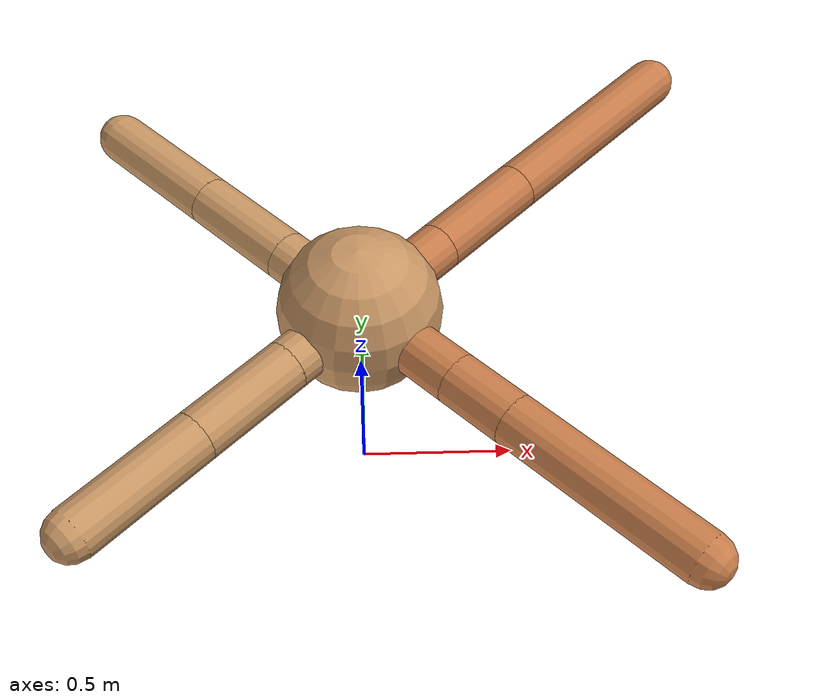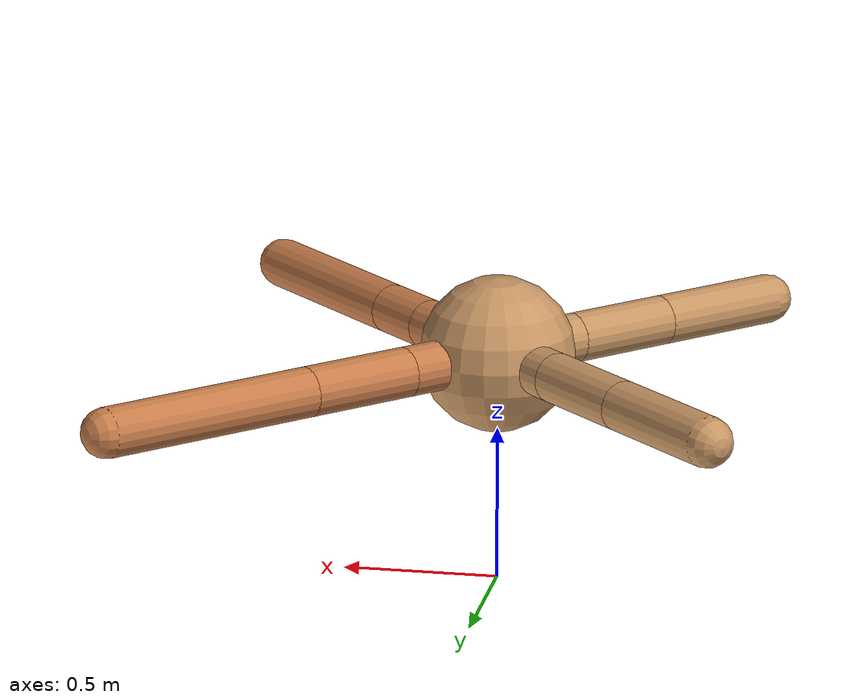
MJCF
<mujoco model="ant">
  <compiler angle="degree" coordinate="local" inertiafromgeom="true" />
  <option integrator="RK4" timestep="0.01" />
  <custom>
    <numeric data="0.0 0.0 0.55 1.0 0.0 0.0 0.0 0.0 1.0 0.0 -1.0 0.0 -1.0 0.0 1.0" name="init_qpos" />
  </custom>
  <default>
    <joint armature="1" damping="1" limited="true" />
    <geom conaffinity="0" condim="3" density="5.0" friction="1.5 0.1 0.1" margin="0.01" rgba="0.8 0.6 0.4 1" />
  </default>
  <worldbody>
    <body name="torso" pos="0 0 0.75">
      <geom name="torso_geom" pos="0 0 0" size="0.25" type="sphere" />

      <body name="front_left_leg" pos="0 0 0">
        <geom fromto="0.0 0.0 0.0 0.24970136441743787 0.24970136441743787 0.0" name="aux_1_geom" size="0.08" type="capsule" rgba=".8 .5 .3 1" />
        <body name="aux_1" pos="0.24970136441743787 0.24970136441743787 0.0">
          <joint axis="0 0 1" name="hip_1" pos="0.0 0.0 0.0" range="-40 40" type="hinge" />
          <geom fromto="0.0 0.0 0.0 0.26029618602706867 0.26029618602706867 0.0" name="left_leg_geom" size="0.08" type="capsule" rgba=".8 .5 .3 1" />
          <body pos="0.26029618602706867 0.26029618602706867 0.0" name="front_left_foot">
            <joint axis="-1 1 0" name="ankle_1" pos="0.0 0.0 0.0" range="30 100" type="hinge" />
            <geom fromto="0.0 0.0 0.0 0.5174450995669156 0.5174450995669156 0.0" name="left_ankle_geom" size="0.08" type="capsule" rgba=".8 .5 .3 1" />
          </body>
        </body>
      </body>
      <body name="front_right_leg" pos="0 0 0">
        <geom fromto="0.0 0.0 0.0 -0.2240509944872393 0.2240509944872393 0.0" name="aux_2_geom" size="0.08" type="capsule" />
        <body name="aux_2" pos="-0.2240509944872393 0.2240509944872393 0.0">
          <joint axis="0 0 1" name="hip_2" pos="0.0 0.0 0.0" range="-40 40" type="hinge" />
          <geom fromto="0.0 0.0 0.0 -0.2498043961836931 0.2498043961836931 0.0" name="right_leg_geom" size="0.08" type="capsule" />
          <body pos="-0.2498043961836931 0.2498043961836931 0.0" name="front_right_foot">
            <joint axis="1 1 0" name="ankle_2" pos="0.0 0.0 0.0" range="-100 -30" type="hinge" />
            <geom fromto="0.0 0.0 0.0 -0.3111179754976924 0.3111179754976924 0.0" name="right_ankle_geom" size="0.08" type="capsule" />
          </body>
        </body>
      </body>
      <body name="left_back_leg" pos="0 0 0">
        <geom fromto="0.0 0.0 0.0 -0.2118293316578911 -0.2118293316578911 0.0" name="aux_3_geom" size="0.08" type="capsule" />
        <body name="aux_3" pos="-0.2118293316578911 -0.2118293316578911 0.0">
          <joint axis="0 0 1" name="hip_3" pos="0.0 0.0 0.0" range="-40 40" type="hinge" />
          <geom fromto="0.0 0.0 0.0 -0.2440291025557862 -0.2440291025557862 0.0" name="back_leg_geom" size="0.08" type="capsule" />
          <body pos="-0.2440291025557862 -0.2440291025557862 0.0" name="left_back_foot">
            <joint axis="-1 1 0" name="ankle_3" pos="0.0 0.0 0.0" range="-100 -30" type="hinge" />
            <geom fromto="0.0 0.0 0.0 -0.3036430518176424 -0.3036430518176424 0.0" name="third_ankle_geom" size="0.08" type="capsule" />
          </body>
        </body>
      </body>
      <body name="right_back_leg" pos="0 0 0">
        <geom fromto="0.0 0.0 0.0 0.2726689935800072 -0.2726689935800072 0.0" name="aux_4_geom" size="0.08" type="capsule" rgba=".8 .5 .3 1" />
        <body name="aux_4" pos="0.2726689935800072 -0.2726689935800072 0.0">
          <joint axis="0 0 1" name="hip_4" pos="0.0 0.0 0.0" range="-40 40" type="hinge" />
          <geom fromto="0.0 0.0 0.0 0.1494357112886285 -0.1494357112886285 0.0" name="rightback_leg_geom" size="0.08" type="capsule" rgba=".8 .5 .3 1" />
          <body pos="0.1494357112886285 -0.1494357112886285 0.0" name="right_back_foot">
            <joint axis="1 1 0" name="ankle_4" pos="0.0 0.0 0.0" range="30 100" type="hinge" />
            <geom fromto="0.0 0.0 0.0 0.4577240228757562 -0.4577240228757562 0.0" name="fourth_ankle_geom" size="0.08" type="capsule" rgba=".8 .5 .3 1" />
          </body>
        </body>
      </body>
    </body>
  </worldbody>
  <actuator>
    <motor ctrllimited="true" ctrlrange="-1.0 1.0" joint="hip_4" gear="150" />
    <motor ctrllimited="true" ctrlrange="-1.0 1.0" joint="ankle_4" gear="150" />
    <motor ctrllimited="true" ctrlrange="-1.0 1.0" joint="hip_1" gear="150" />
    <motor ctrllimited="true" ctrlrange="-1.0 1.0" joint="ankle_1" gear="150" />
    <motor ctrllimited="true" ctrlrange="-1.0 1.0" joint="hip_2" gear="150" />
    <motor ctrllimited="true" ctrlrange="-1.0 1.0" joint="ankle_2" gear="150" />
    <motor ctrllimited="true" ctrlrange="-1.0 1.0" joint="hip_3" gear="150" />
    <motor ctrllimited="true" ctrlrange="-1.0 1.0" joint="ankle_3" gear="150" />
  </actuator>
</mujoco>
